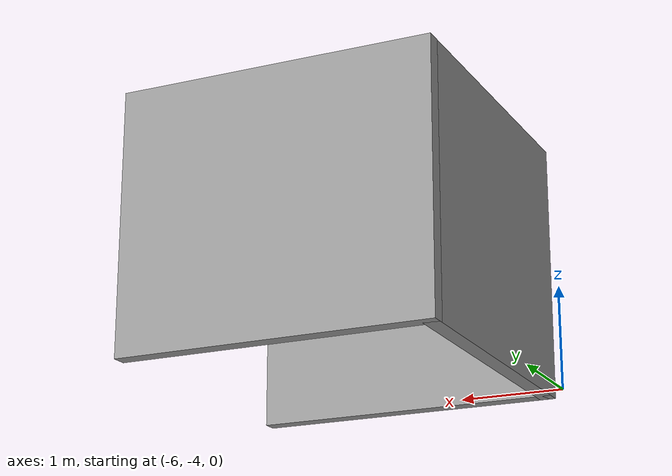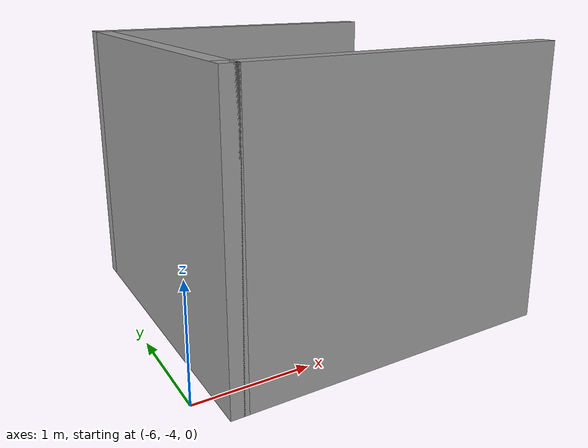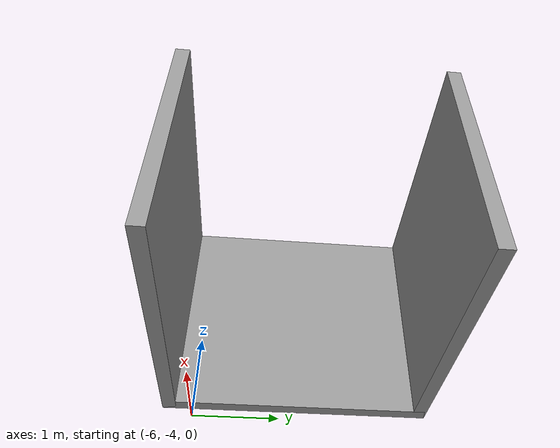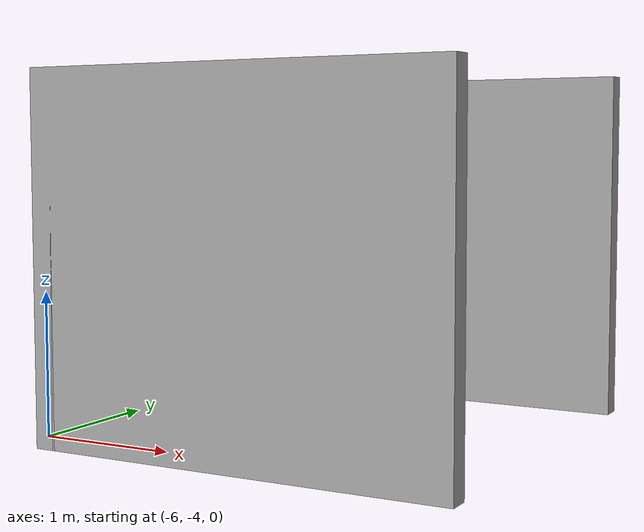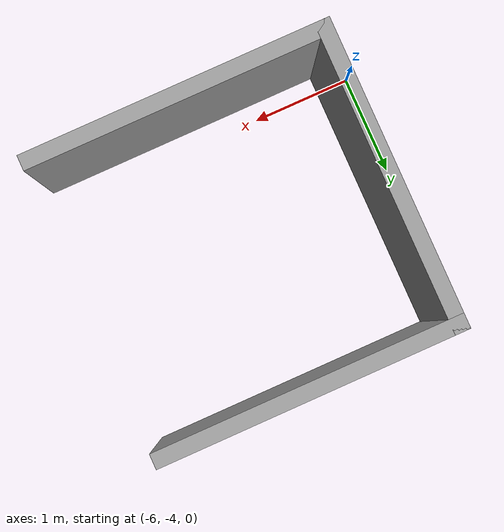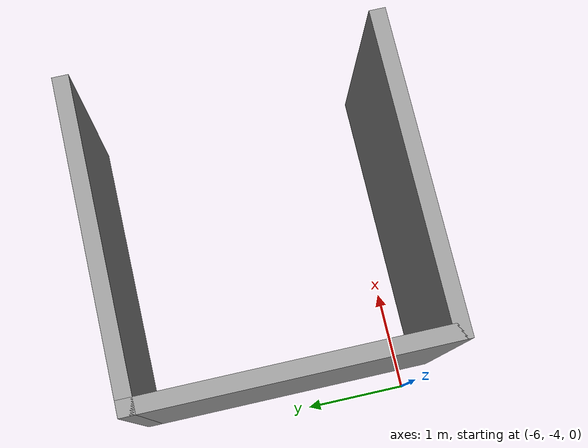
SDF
<?xml version='1.0'?>
<sdf version='1.7'>
  <model name='room'>
    <pose>-2.9125 -2.1575 0 0 -0 0</pose>
    <link name='Wall_0'>
      <collision name='Wall_0_Collision'>
        <geometry>
          <box>
            <size>3 0.15 2.5</size>
          </box>
        </geometry>
        <pose>0 0 1.25 0 -0 0</pose>
      </collision>
      <visual name='Wall_0_Visual'>
        <pose>0 0 1.25 0 -0 0</pose>
        <geometry>
          <box>
            <size>3 0.15 2.5</size>
          </box>
        </geometry>
        <material>
          <script>
            <uri>file://media/materials/scripts/gazebo.material</uri>
            <name>Gazebo/Grey</name>
          </script>
          <ambient>1 1 1 1</ambient>
        </material>
        <meta>
          <layer>0</layer>
        </meta>
      </visual>
      <pose>-1.4125 0.7675 0 0 -0 3.14159</pose>
    </link>
    <link name='Wall_1'>
      <collision name='Wall_1_Collision'>
        <geometry>
          <box>
            <size>3 0.15 2.5</size>
          </box>
        </geometry>
        <pose>0 0 1.25 0 -0 0</pose>
      </collision>
      <visual name='Wall_1_Visual'>
        <pose>0 0 1.25 0 -0 0</pose>
        <geometry>
          <box>
            <size>3 0.15 2.5</size>
          </box>
        </geometry>
        <material>
          <script>
            <uri>file://media/materials/scripts/gazebo.material</uri>
            <name>Gazebo/Grey</name>
          </script>
          <ambient>1 1 1 1</ambient>
        </material>
        <meta>
          <layer>0</layer>
        </meta>
      </visual>
      <pose>-2.8375 -0.6575 0 0 -0 -1.5708</pose>
    </link>
    <link name='Wall_2'>
      <collision name='Wall_2_Collision'>
        <geometry>
          <box>
            <size>3 0.15 2.5</size>
          </box>
        </geometry>
        <pose>0 0 1.25 0 -0 0</pose>
      </collision>
      <visual name='Wall_2_Visual'>
        <pose>0 0 1.25 0 -0 0</pose>
        <geometry>
          <box>
            <size>3 0.15 2.5</size>
          </box>
        </geometry>
        <material>
          <script>
            <uri>file://media/materials/scripts/gazebo.material</uri>
            <name>Gazebo/Grey</name>
          </script>
          <ambient>1 1 1 1</ambient>
        </material>
        <meta>
          <layer>0</layer>
        </meta>
      </visual>
      <pose>-1.4125 -2.0825 0 0 -0 0</pose>
    </link>
    <static>1</static>
  </model>
</sdf>
